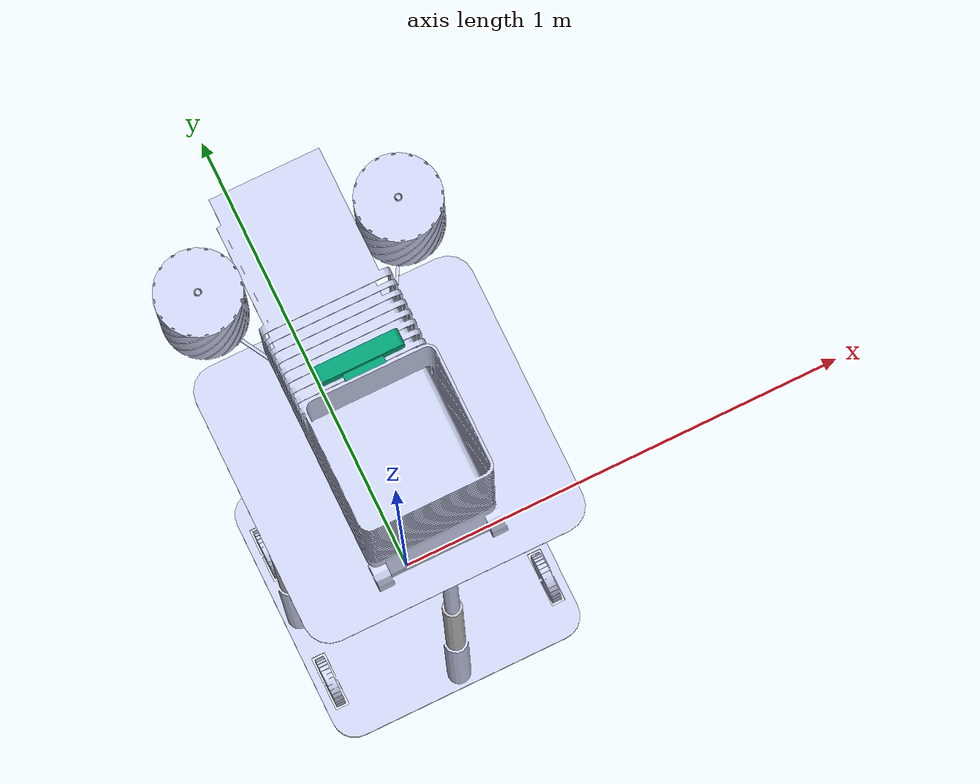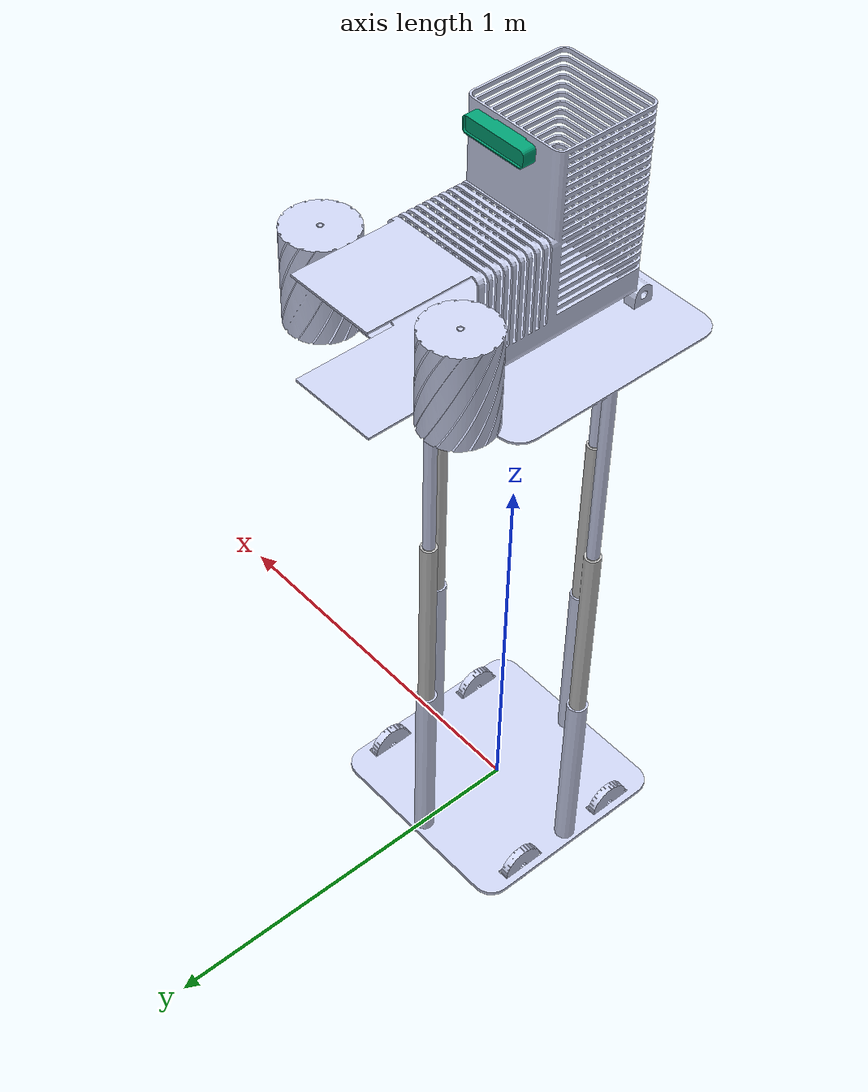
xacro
<?xml version="1.0" encoding="utf-8"?>
<robot name="test8" xmlns:xacro="https://www.ros.org/wiki/xacro">
  <xacro:include filename="robot.urdf.xacro"/>
  <xacro:include filename="control_sim.urdf.xacro"/>

  <gazebo reference="rgb_cam_camera_link_frame">
    <sensor type="depth" name="depth_camera">
      <update_rate>30.0</update_rate>
      <camera name="depth_camera">
        <pose>0 0 0 0 0 0</pose>
        <horizontal_fov>1.3962634</horizontal_fov>
        <image>
          <width>640</width>
          <height>480</height>
          <format>R8G8B8</format>
        </image>
        <clip>
          <near>0.005</near>
          <far>10.0</far>
        </clip>
      </camera>

        <cameraName>depth_camera</cameraName>
        <alwaysOn>true</alwaysOn>
        <updateRate>10</updateRate>
        <imageTopicName>rgb/image_raw</imageTopicName>
        <depthImageTopicName>depth/image_raw</depthImageTopicName>
        <pointCloudTopicName>depth/points</pointCloudTopicName>
        <cameraInfoTopicName>rgb/camera_info</cameraInfoTopicName>
        <depthImageCameraInfoTopicName>depth/camera_info</depthImageCameraInfoTopicName>
        <gz_frame_id>rgb_cam_camera_link_frame</gz_frame_id>
        <pointCloudCutoff>0.5</pointCloudCutoff>
        <pointCloudCutoffMax>3.0</pointCloudCutoffMax>
        <hackBaseline>0.07</hackBaseline>
        <distortionK1>0.0</distortionK1>
        <distortionK2>0.0</distortionK2>
        <distortionK3>0.0</distortionK3>
        <distortionT1>0.0</distortionT1>
        <distortionT2>0.0</distortionT2>
        <CxPrime>0</CxPrime>
        <Cx>0</Cx>
        <Cy>0</Cy>
        <focalLength>0</focalLength>

    </sensor>
  </gazebo>
</robot>

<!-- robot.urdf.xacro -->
<robot xmlns:xacro="https://www.ros.org/wiki/xacro">
  <link
    name="base_link">
    <inertial>
      <origin
        xyz="3.6727E-17 -2.8365E-17 0.075958"
        rpy="0 0 0" />
      <mass
        value="20" />
      <inertia
        ixx="0.11077"
        ixy="2.4867E-17"
        ixz="3.3444E-20"
        iyy="0.10535"
        iyz="1.0449E-19"
        izz="0.15521" />
    </inertial>
    <visual>
      <origin
        xyz="0 0 0"
        rpy="0 0 0" />
      <geometry>
        <mesh
          filename="file://$(find test8)/meshes/base_link.STL" />
      </geometry>
      <material
        name="">
        <color
          rgba="0.79216 0.81961 0.93333 1" />
      </material>
    </visual>
    <collision>
      <origin
        xyz="0 0 0"
        rpy="0 0 0" />
      <geometry>
        <mesh
          filename="file://$(find test8)/meshes/base_link.STL" />
      </geometry>
    </collision>
  </link>
  <link
    name="left_wheel_front">
    <inertial>
      <origin
        xyz="-0.01 -6.1654E-10 3.7643E-10"
        rpy="0 0 0" />
      <mass
        value="0.18058" />
      <inertia
        ixx="0.00027782"
        ixy="5.6824E-15"
        ixz="9.8878E-15"
        iyy="0.00014493"
        iyz="2.237E-12"
        izz="0.00014493" />
    </inertial>
    <visual>
      <origin
        xyz="0 0 0"
        rpy="0 0 0" />
      <geometry>
        <mesh
          filename="file://$(find test8)/meshes/left_wheel_front.STL" />
      </geometry>
      <material
        name="">
        <color
          rgba="0.79216 0.81961 0.93333 1" />
      </material>
    </visual>
    <collision>
      <origin
        xyz="0 0 0"
        rpy="0 0 0" />
      <geometry>
        <mesh
          filename="file://$(find test8)/meshes/left_wheel_front.STL" />
      </geometry>
    </collision>
  </link>
  <joint
    name="leftwheelfront"
    type="continuous">
    <origin
      xyz="-0.24 0.15 -0.005"
      rpy="0 0 0" />
    <parent
      link="base_link" />
    <child
      link="left_wheel_front" />
    <axis
      xyz="1 0 0" />
    <limit
      effort="10"
      velocity="10" />
    <dynamics
      damping="0.5"
      friction="0.1" />
    <safety_controller
      soft_upper_limit="0"
      soft_lower_limit="0"
      k_velocity="0" />
  </joint>
  <link
    name="left_wheel_behind">
    <inertial>
      <origin
        xyz="-0.01 -6.0434E-10 3.957E-10"
        rpy="0 0 0" />
      <mass
        value="0.18058" />
      <inertia
        ixx="0.00027782"
        ixy="5.9917E-15"
        ixz="9.7035E-15"
        iyy="0.00014493"
        iyz="2.3221E-12"
        izz="0.00014493" />
    </inertial>
    <visual>
      <origin
        xyz="0 0 0"
        rpy="0 0 0" />
      <geometry>
        <mesh
          filename="file://$(find test8)/meshes/left_wheel_behind.STL" />
      </geometry>
      <material
        name="">
        <color
          rgba="0.79216 0.81961 0.93333 1" />
      </material>
    </visual>
    <collision>
      <origin
        xyz="0 0 0"
        rpy="0 0 0" />
      <geometry>
        <mesh
          filename="file://$(find test8)/meshes/left_wheel_behind.STL" />
      </geometry>
    </collision>
  </link>
  <joint
    name="leftwheelbehind"
    type="continuous">
    <origin
      xyz="-0.24 -0.15 -0.005"
      rpy="0 0 0" />
    <parent
      link="base_link" />
    <child
      link="left_wheel_behind" />
    <axis
      xyz="1 0 0" />
    <limit
      effort="10"
      velocity="10" />
    <dynamics
      damping="0.5"
      friction="0.1" />
    <safety_controller
      soft_upper_limit="0"
      soft_lower_limit="0"
      k_velocity="0" />
  </joint>
  <link
    name="right_wheel_front">
    <inertial>
      <origin
        xyz="-0.01 6.9947E-10 1.8043E-10"
        rpy="0 0 0" />
      <mass
        value="0.18058" />
      <inertia
        ixx="0.00027782"
        ixy="3.1408E-15"
        ixz="-1.0963E-14"
        iyy="0.00014493"
        iyz="-1.4863E-12"
        izz="0.00014493" />
    </inertial>
    <visual>
      <origin
        xyz="0 0 0"
        rpy="0 0 0" />
      <geometry>
        <mesh
          filename="file://$(find test8)/meshes/right_wheel_front.STL" />
      </geometry>
      <material
        name="">
        <color
          rgba="0.79216 0.81961 0.93333 1" />
      </material>
    </visual>
    <collision>
      <origin
        xyz="0 0 0"
        rpy="0 0 0" />
      <geometry>
        <mesh
          filename="file://$(find test8)/meshes/right_wheel_front.STL" />
      </geometry>
    </collision>
  </link>
  <joint
    name="rightwheelfront"
    type="continuous">
    <origin
      xyz="0.26 0.15 -0.005"
      rpy="0 0 0" />
    <parent
      link="base_link" />
    <child
      link="right_wheel_front" />
    <axis
      xyz="1 0 0" />
    <limit
      effort="10"
      velocity="10" />
    <dynamics
      damping="0.5"
      friction="0.1" />
    <safety_controller
      soft_upper_limit="0"
      soft_lower_limit="0"
      k_velocity="0" />
  </joint>
  <link
    name="right_wheel_behind">
    <inertial>
      <origin
        xyz="-0.01 3.2127E-10 6.4699E-10"
        rpy="0 0 0" />
      <mass
        value="0.18058" />
      <inertia
        ixx="0.00027782"
        ixy="1.0345E-14"
        ixz="-4.799E-15"
        iyy="0.00014493"
        iyz="-1.9567E-12"
        izz="0.00014493" />
    </inertial>
    <visual>
      <origin
        xyz="0 0 0"
        rpy="0 0 0" />
      <geometry>
        <mesh
          filename="file://$(find test8)/meshes/right_wheel_behind.STL" />
      </geometry>
      <material
        name="">
        <color
          rgba="0.79216 0.81961 0.93333 1" />
      </material>
    </visual>
    <collision>
      <origin
        xyz="0 0 0"
        rpy="0 0 0" />
      <geometry>
        <mesh
          filename="file://$(find test8)/meshes/right_wheel_behind.STL" />
      </geometry>
    </collision>
  </link>
  <joint
    name="rightwheelbehind"
    type="continuous">
    <origin
      xyz="0.26 -0.15 -0.005"
      rpy="0 0 0" />
    <parent
      link="base_link" />
    <child
      link="right_wheel_behind" />
    <axis
      xyz="1 0 0" />
    <limit
      effort="10"
      velocity="10" />
    <dynamics
      damping="0.5"
      friction="0.1" />
    <safety_controller
      soft_upper_limit="0"
      soft_lower_limit="0"
      k_velocity="0" />
  </joint>
  <link
    name="slide_mid">
    <inertial>
      <origin
        xyz="0.24 0.15 0.75373"
        rpy="0 0 0" />
      <mass
        value="1.1052" />
      <inertia
        ixx="0.023428"
        ixy="-1.747E-20"
        ixz="1.4335E-20"
        iyy="0.023428"
        iyz="-6.4774E-20"
        izz="0.00034425" />
    </inertial>
    <visual>
      <origin
        xyz="0 0 0"
        rpy="0 0 0" />
      <geometry>
        <mesh
          filename="file://$(find test8)/meshes/slide_mid.STL" />
      </geometry>
      <material
        name="">
        <color
          rgba="0.75294 0.75294 0.75294 1" />
      </material>
    </visual>
    <collision>
      <origin
        xyz="0 0 0"
        rpy="0 0 0" />
      <geometry>
        <mesh
          filename="file://$(find test8)/meshes/slide_mid.STL" />
      </geometry>
    </collision>
  </link>
  <joint
    name="slidemid"
    type="prismatic">
    <origin
      xyz="-0.24 -0.15 -0.005"
      rpy="0 0 0" />
    <parent
      link="base_link" />
    <child
      link="slide_mid" />
    <axis
      xyz="0 0 1" />
    <limit
      lower="-0.5"
      upper="0"
      effort="30"
      velocity="3" />
  </joint>
  <link
    name="slide_up">
    <inertial>
      <origin
        xyz="1.3507E-16 -0.0076694 1.3909"
        rpy="0 0 0" />
      <mass
        value="3.118" />
      <inertia
        ixx="0.17041"
        ixy="-1.0045E-18"
        ixz="6.7696E-17"
        iyy="0.16713"
        iyz="0.0033085"
        izz="0.17861" />
    </inertial>
    <visual>
      <origin
        xyz="0 0 0"
        rpy="0 0 0" />
      <geometry>
        <mesh
          filename="file://$(find test8)/meshes/slide_up.STL" />
      </geometry>
      <material
        name="">
        <color
          rgba="0.79216 0.81961 0.93333 1" />
      </material>
    </visual>
    <collision>
      <origin
        xyz="0 0 0"
        rpy="0 0 0" />
      <geometry>
        <mesh
          filename="file://$(find test8)/meshes/slide_up.STL" />
      </geometry>
    </collision>
  </link>
  <joint
    name="slideup"
    type="prismatic">
    <origin
      xyz="0.24 0.15 0.005"
      rpy="0 0 0" />
    <parent
      link="slide_mid" />
    <child
      link="slide_up" />
    <axis
      xyz="0 0 1" />
    <limit
      lower="-0.5"
      upper="0"
      effort="30"
      velocity="3" />
  </joint>
  <link
    name="ban_bong">
    <inertial>
      <origin
        xyz="-2.4103E-06 0.27402 0.16504"
        rpy="0 0 0" />
      <mass
        value="2.9283" />
      <inertia
        ixx="0.18081"
        ixy="-9.0293E-07"
        ixz="1.1514E-07"
        iyy="0.086661"
        iyz="0.0049101"
        izz="0.14676" />
    </inertial>
    <visual>
      <origin
        xyz="0 0 0"
        rpy="0 0 0" />
      <geometry>
        <mesh
          filename="file://$(find test8)/meshes/ban_bong.STL" />
      </geometry>
      <material
        name="">
        <color
          rgba="0.79216 0.81961 0.93333 1" />
      </material>
    </visual>
    <collision>
      <origin
        xyz="0 0 0"
        rpy="0 0 0" />
      <geometry>
        <mesh
          filename="file://$(find test8)/meshes/ban_bong.STL" />
      </geometry>
    </collision>
  </link>
  <joint
    name="banbong"
    type="revolute">
    <origin
      xyz="0 -0.20709 1.526"
      rpy="0 0 0" />
    <parent
      link="slide_up" />
    <child
      link="ban_bong" />
    <axis
      xyz="1 0 0" />
    <limit
      lower="0"
      upper="1.0472"
      effort="300"
      velocity="3" />
  </joint>
  <link
    name="ban_left">
    <inertial>
      <origin
        xyz="1.978E-07 -9.3902E-08 -0.085941"
        rpy="0 0 0" />
      <mass
        value="2" />
      <inertia
        ixx="0.027647"
        ixy="-1.2701E-08"
        ixz="-1.3654E-08"
        iyy="0.027647"
        iyz="-1.8985E-08"
        izz="0.015794" />
    </inertial>
    <visual>
      <origin
        xyz="0 0 0"
        rpy="0 0 0" />
      <geometry>
        <mesh
          filename="file://$(find test8)/meshes/ban_left.STL" />
      </geometry>
      <material
        name="">
        <color
          rgba="0.79216 0.81961 0.93333 1" />
      </material>
    </visual>
    <collision>
      <origin
        xyz="0 0 0"
        rpy="0 0 0" />
      <geometry>
        <mesh
          filename="file://$(find test8)/meshes/ban_left.STL" />
      </geometry>
    </collision>
  </link>
  <joint
    name="banleft"
    type="continuous">
    <origin
      xyz="-0.2 0.56815 0.24066"
      rpy="0 0 0" />
    <parent
      link="ban_bong" />
    <child
      link="ban_left" />
    <axis
      xyz="0 0 1" />
    <limit
      effort="10"
      velocity="10" />
    <dynamics
      damping="0.1"
      friction="0.1" />
  </joint>
  <link
    name="ban_right">
    <inertial>
      <origin
        xyz="1.7597E-07 1.3029E-07 -0.1125"
        rpy="0 0 0" />
      <mass
        value="2" />
      <inertia
        ixx="0.027647"
        ixy="-3.437E-08"
        ixz="1.0185E-08"
        iyy="0.027647"
        iyz="-2.0642E-08"
        izz="0.015794" />
    </inertial>
    <visual>
      <origin
        xyz="0 0 0"
        rpy="0 0 0" />
      <geometry>
        <mesh
          filename="file://$(find test8)/meshes/ban_right.STL" />
      </geometry>
      <material
        name="">
        <color
          rgba="0.79216 0.81961 0.93333 1" />
      </material>
    </visual>
    <collision>
      <origin
        xyz="0 0 0"
        rpy="0 0 0" />
      <geometry>
        <mesh
          filename="file://$(find test8)/meshes/ban_right.STL" />
      </geometry>
    </collision>
  </link>
  <joint
    name="banright"
    type="continuous">
    <origin
      xyz="0.2 0.56815 0.26722"
      rpy="0 0 0" />
    <parent
      link="ban_bong" />
    <child
      link="ban_right" />
    <axis
      xyz="0 0 1" />
    <limit
      effort="10"
      velocity="10" />
    <dynamics
      damping="0.1"
      friction="0.1" />
  </joint>
  <link name='rgb_cam_camera_link'>
      <visual>
        <origin xyz="0 0 0" rpy="0 0 0" />
        <geometry>
          <mesh filename="file://$(find test8)/meshes/camera1.STL" />
        </geometry>
      </visual>
  </link>

  <joint name="rgb_cam_camera_link_joint" type="fixed">
    <origin
      xyz="0 0.302656854249492 0.440656854249493"
      rpy="0 0 0" />
    <parent link="ban_bong" />
    <child link="rgb_cam_camera_link" />
    <axis xyz="0 0 0" />
  </joint>

  <link name="rgb_cam_camera_link_frame"></link>
  <joint name="rgb_cam_camera_frame_joint" type="fixed">
    <origin xyz="0 0 0" rpy="0 0 1.57019" />
    <parent link="rgb_cam_camera_link" />
    <child link="rgb_cam_camera_link_frame" />
    <axis xyz="0 0 0" />
  </joint>

</robot>
